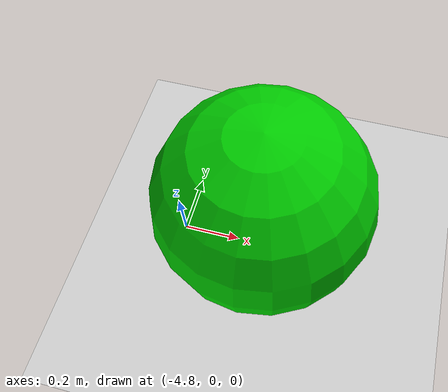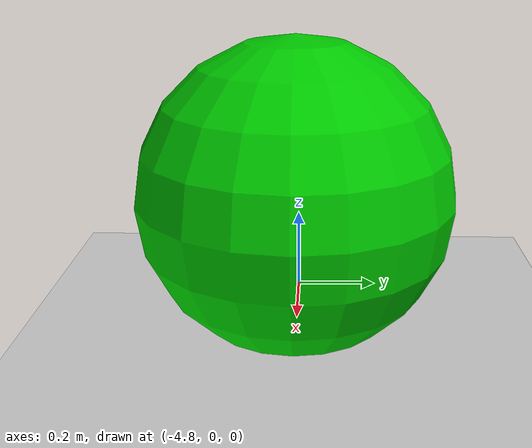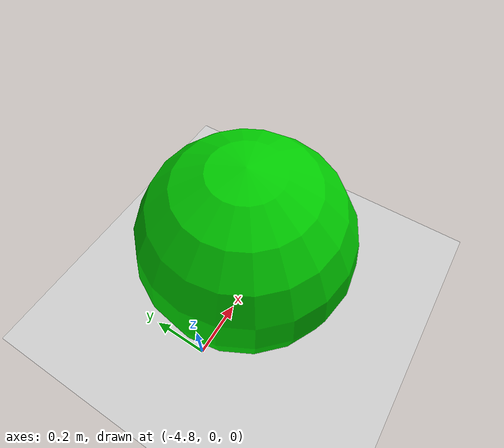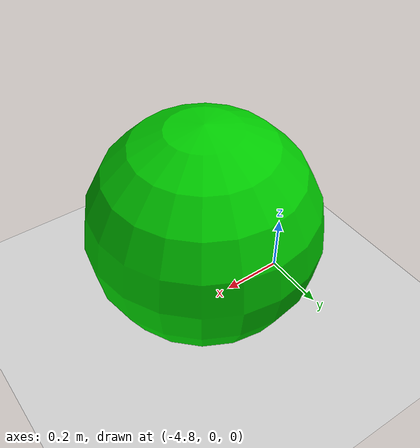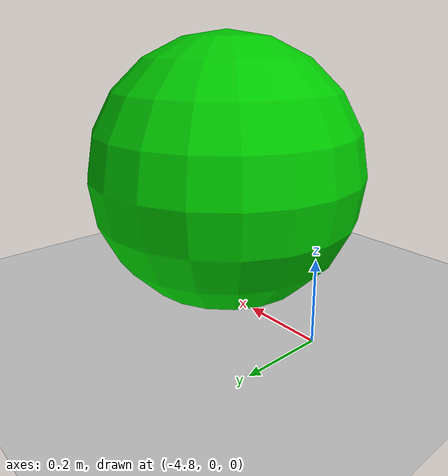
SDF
<sdf version="1.6">

  <world name="green_sphere_world">

    <!-- Physics -->

    <physics type="ode">

      <real_time_update_rate>
        1000.0
      </real_time_update_rate>

      <max_step_size>
        0.001
      </max_step_size>

      <real_time_factor>
        1.0
      </real_time_factor>

    </physics>

    <!-- Gazebo ROS -->

    <plugin
      name="gazebo_ros_init"
      filename="libgazebo_ros_init.so"/>

    <plugin
      name="gazebo_ros_factory"
      filename="libgazebo_ros_factory.so"/>

    <!-- Scene -->

    <scene>

      <ambient>
        0.8 0.8 0.8 1.0
      </ambient>

      <background>
        0.7 0.7 0.7 1.0
      </background>

      <shadows>false</shadows>

    </scene>

    <!-- Environment -->

    <include>
      <uri>model://sun</uri>
    </include>

    <include>
      <uri>model://ground_plane</uri>
    </include>

    <!-- Green target -->

    <model name="green_sphere">

      <static>true</static>

      <pose>
        -4.5 0 0.35 0 0 0
      </pose>

      <link name="sphere_link">

        <visual name="sphere_visual">

          <geometry>

            <sphere>
              <radius>0.35</radius>
            </sphere>

          </geometry>

          <material>

            <ambient>
              0.0 0.8 0.0 1.0
            </ambient>

            <diffuse>
              0.0 0.8 0.0 1.0
            </diffuse>

            <specular>
              0.1 0.1 0.1 1.0
            </specular>

          </material>

        </visual>

        <collision name="sphere_collision">

          <geometry>

            <sphere>
              <radius>0.35</radius>
            </sphere>

          </geometry>

        </collision>

      </link>

    </model>

  </world>

</sdf>
